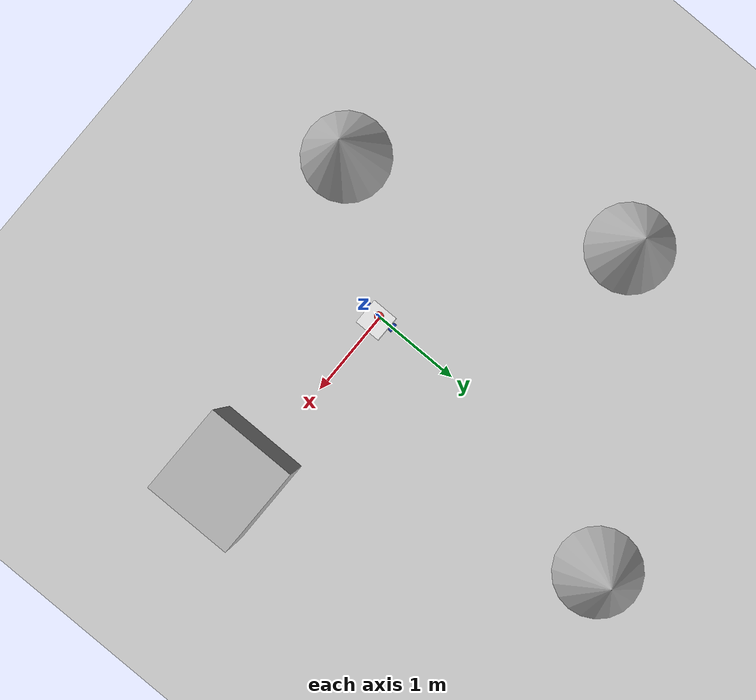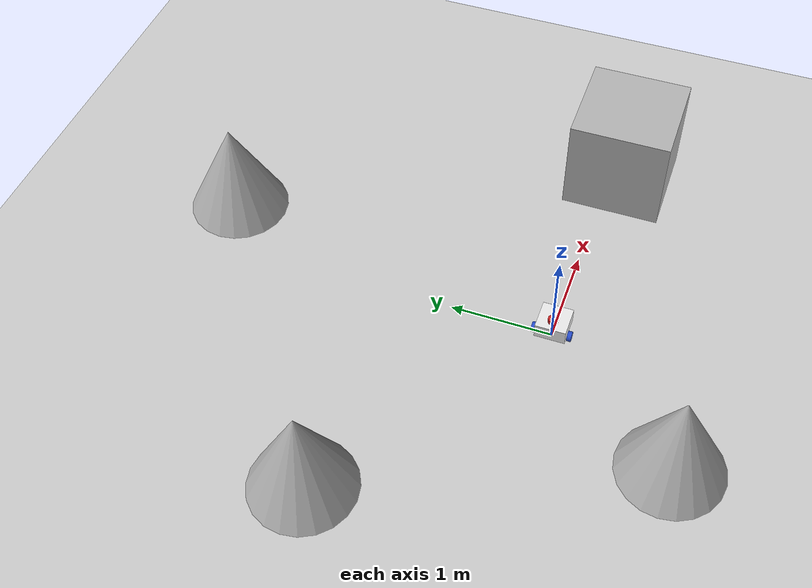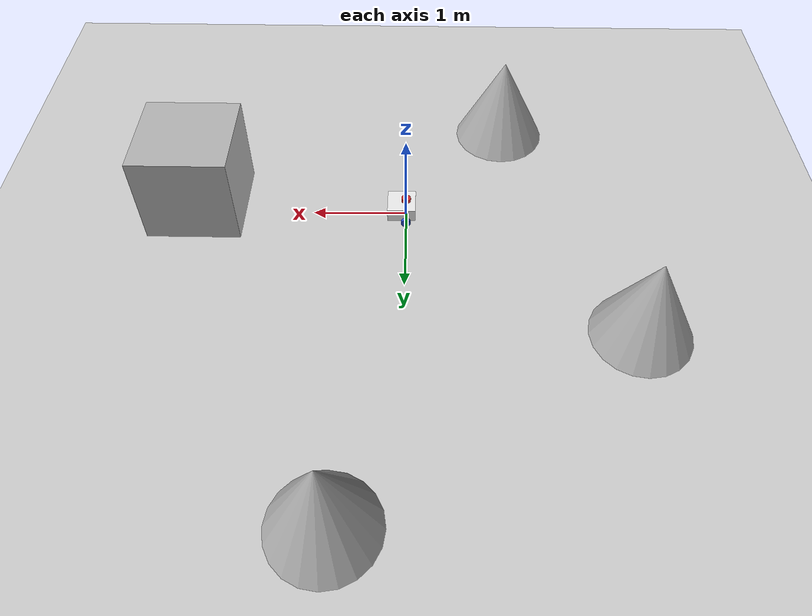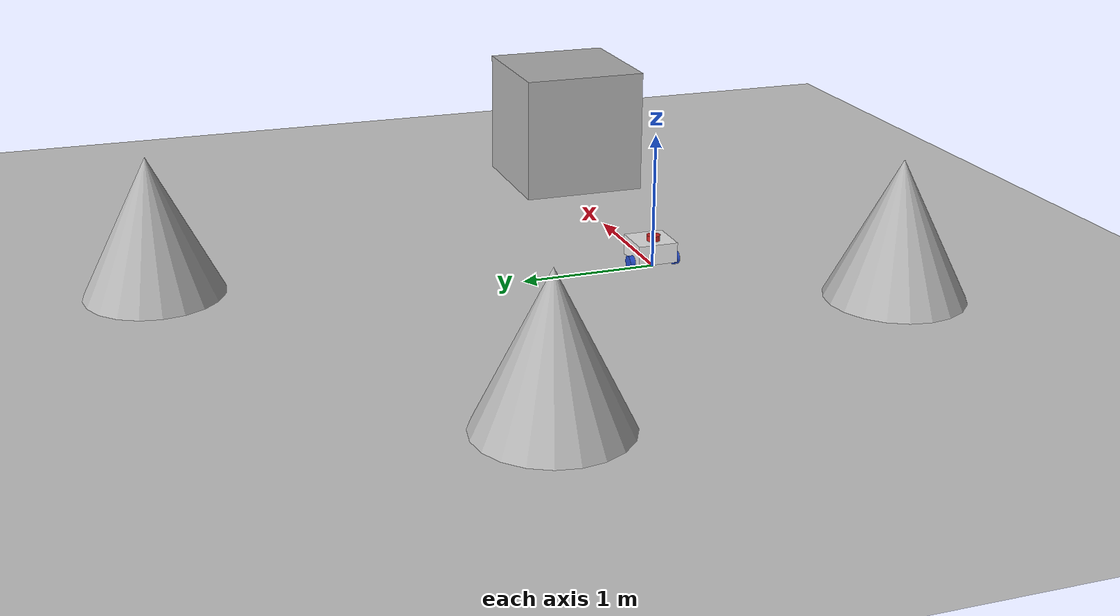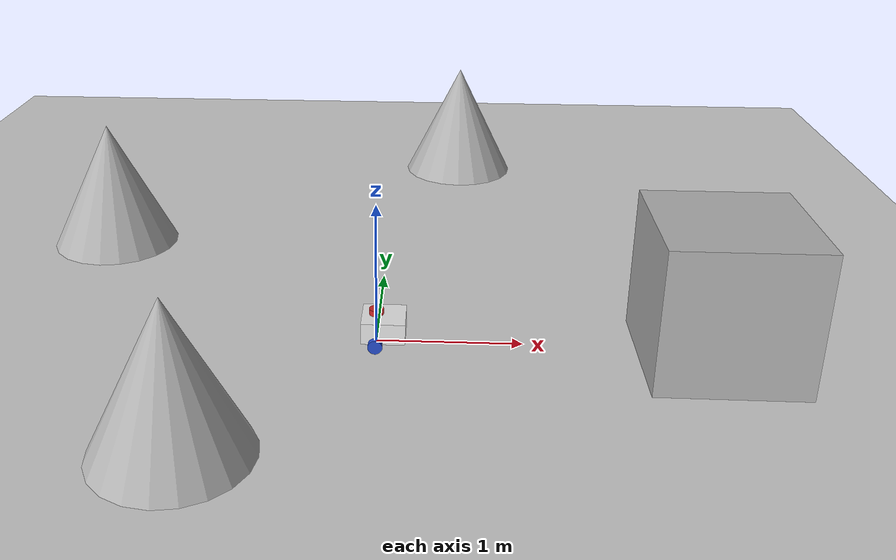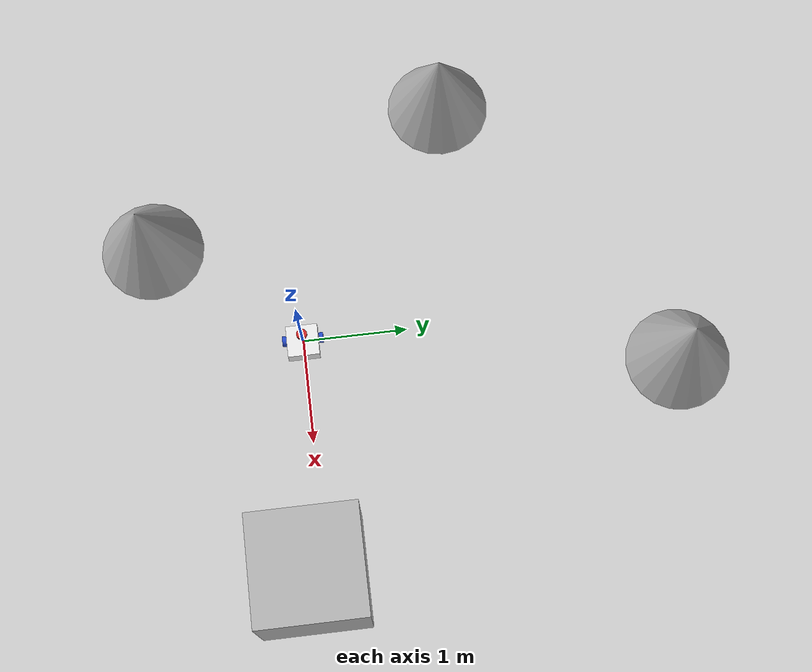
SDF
<sdf version='1.10'>
  <world name='empty'>
    <physics name='1ms' type='ignored'>
      <max_step_size>0.001</max_step_size>
      <real_time_factor>1</real_time_factor>
      <real_time_update_rate>1000</real_time_update_rate>
    </physics>
    <plugin name='gz::sim::systems::Physics' filename='gz-sim-physics-system'/>
    <plugin name='gz::sim::systems::UserCommands' filename='gz-sim-user-commands-system'/>
    <plugin name='gz::sim::systems::SceneBroadcaster' filename='gz-sim-scene-broadcaster-system'/>
    <plugin name='gz::sim::systems::Contact' filename='gz-sim-contact-system'/>
    <gravity>0 0 -9.8000000000000007</gravity>
    <magnetic_field>5.5644999999999998e-06 2.2875799999999999e-05 -4.2388400000000002e-05</magnetic_field>
    <atmosphere type='adiabatic'/>
    <scene>
      <ambient>0.400000006 0.400000006 0.400000006 1</ambient>
      <background>0.699999988 0.699999988 0.699999988 1</background>
      <shadows>true</shadows>
    </scene>
    <model name='ground_plane'>
      <static>true</static>
      <link name='link'>
        <collision name='collision'>
          <geometry>
            <plane>
              <normal>0 0 1</normal>
              <size>100 100</size>
            </plane>
          </geometry>
          <surface>
            <friction>
              <ode/>
            </friction>
            <bounce/>
            <contact/>
          </surface>
        </collision>
        <visual name='visual'>
          <geometry>
            <plane>
              <normal>0 0 1</normal>
              <size>100 100</size>
            </plane>
          </geometry>
          <material>
            <ambient>0.800000012 0.800000012 0.800000012 1</ambient>
            <diffuse>0.800000012 0.800000012 0.800000012 1</diffuse>
            <specular>0.800000012 0.800000012 0.800000012 1</specular>
          </material>
        </visual>
        <pose>0 0 0 0 0 0</pose>
        <inertial>
          <pose>0 0 0 0 0 0</pose>
          <mass>1</mass>
          <inertia>
            <ixx>1</ixx>
            <ixy>0</ixy>
            <ixz>0</ixz>
            <iyy>1</iyy>
            <iyz>0</iyz>
            <izz>1</izz>
          </inertia>
        </inertial>
        <enable_wind>false</enable_wind>
      </link>
      <pose>0 0 0 0 0 0</pose>
      <self_collide>false</self_collide>
    </model>
    <model name='box'>
      <pose>2.2569400000000002 -0.121952 0.5 1.0048e-21 -2.4640900000000001e-21 -3.9210800000000001e-22</pose>
      <link name='box_link'>
        <inertial>
          <inertia>
            <ixx>0.16666</ixx>
            <ixy>0</ixy>
            <ixz>0</ixz>
            <iyy>0.16666</iyy>
            <iyz>0</iyz>
            <izz>0.16666</izz>
          </inertia>
          <mass>1</mass>
          <pose>0 0 0 0 0 0</pose>
        </inertial>
        <collision name='box_collision'>
          <geometry>
            <box>
              <size>1 1 1</size>
            </box>
          </geometry>
          <surface>
            <friction>
              <ode/>
            </friction>
            <bounce/>
            <contact/>
          </surface>
        </collision>
        <visual name='box_visual'>
          <geometry>
            <box>
              <size>1 1 1</size>
            </box>
          </geometry>
          <material>
            <ambient>0.300000012 0.300000012 0.300000012 1</ambient>
            <diffuse>0.699999988 0.699999988 0.699999988 1</diffuse>
            <specular>1 1 1 1</specular>
          </material>
        </visual>
        <pose>0 0 0 0 0 0</pose>
        <enable_wind>false</enable_wind>
      </link>
      <static>false</static>
      <self_collide>false</self_collide>
    </model>
    <model name='cone'>
      <pose>0.59665299999999999 3.5346600000000001 0.5 2.2548599999999999e-12 -8.4123600000000005e-10 1.63284e-17</pose>
      <link name='cone_link'>
        <inertial>
          <inertia>
            <ixx>0.074999999999999997</ixx>
            <ixy>0</ixy>
            <ixz>0</ixz>
            <iyy>0.074999999999999997</iyy>
            <iyz>0</iyz>
            <izz>0.074999999999999997</izz>
          </inertia>
          <mass>1</mass>
          <pose>0 0 0 0 0 0</pose>
        </inertial>
        <collision name='cone_collision'>
          <geometry>
            <cone>
              <radius>0.5</radius>
              <length>1</length>
            </cone>
          </geometry>
          <surface>
            <friction>
              <ode/>
            </friction>
            <bounce/>
            <contact/>
          </surface>
        </collision>
        <visual name='cone_visual'>
          <geometry>
            <cone>
              <radius>0.5</radius>
              <length>1</length>
            </cone>
          </geometry>
          <material>
            <ambient>0.300000012 0.300000012 0.300000012 1</ambient>
            <diffuse>0.699999988 0.699999988 0.699999988 1</diffuse>
            <specular>1 1 1 1</specular>
          </material>
        </visual>
        <pose>0 0 0 0 0 0</pose>
        <enable_wind>false</enable_wind>
      </link>
      <static>false</static>
      <self_collide>false</self_collide>
    </model>
    <model name='cone_0'>
      <pose>-2.2755299999999998 1.57586 0.5 2.2548599999999999e-12 -8.4123600000000005e-10 1.63264e-17</pose>
      <link name='cone_link'>
        <inertial>
          <inertia>
            <ixx>0.074999999999999997</ixx>
            <ixy>0</ixy>
            <ixz>0</ixz>
            <iyy>0.074999999999999997</iyy>
            <iyz>0</iyz>
            <izz>0.074999999999999997</izz>
          </inertia>
          <mass>1</mass>
          <pose>0 0 0 0 0 0</pose>
        </inertial>
        <collision name='cone_collision'>
          <geometry>
            <cone>
              <radius>0.5</radius>
              <length>1</length>
            </cone>
          </geometry>
          <surface>
            <friction>
              <ode/>
            </friction>
            <bounce/>
            <contact/>
          </surface>
        </collision>
        <visual name='cone_visual'>
          <geometry>
            <cone>
              <radius>0.5</radius>
              <length>1</length>
            </cone>
          </geometry>
          <material>
            <ambient>0.300000012 0.300000012 0.300000012 1</ambient>
            <diffuse>0.699999988 0.699999988 0.699999988 1</diffuse>
            <specular>1 1 1 1</specular>
          </material>
        </visual>
        <pose>0 0 0 0 0 0</pose>
        <enable_wind>false</enable_wind>
      </link>
      <static>false</static>
      <self_collide>false</self_collide>
    </model>
    <model name='cone_1'>
      <pose>-1.08355 -1.37382 0.5 2.2548599999999999e-12 -8.4123600000000005e-10 1.6328600000000001e-17</pose>
      <link name='cone_link'>
        <inertial>
          <inertia>
            <ixx>0.074999999999999997</ixx>
            <ixy>0</ixy>
            <ixz>0</ixz>
            <iyy>0.074999999999999997</iyy>
            <iyz>0</iyz>
            <izz>0.074999999999999997</izz>
          </inertia>
          <mass>1</mass>
          <pose>0 0 0 0 0 0</pose>
        </inertial>
        <collision name='cone_collision'>
          <geometry>
            <cone>
              <radius>0.5</radius>
              <length>1</length>
            </cone>
          </geometry>
          <surface>
            <friction>
              <ode/>
            </friction>
            <bounce/>
            <contact/>
          </surface>
        </collision>
        <visual name='cone_visual'>
          <geometry>
            <cone>
              <radius>0.5</radius>
              <length>1</length>
            </cone>
          </geometry>
          <material>
            <ambient>0.300000012 0.300000012 0.300000012 1</ambient>
            <diffuse>0.699999988 0.699999988 0.699999988 1</diffuse>
            <specular>1 1 1 1</specular>
          </material>
        </visual>
        <pose>0 0 0 0 0 0</pose>
        <enable_wind>false</enable_wind>
      </link>
      <static>false</static>
      <self_collide>false</self_collide>
    </model>
    <model name='my_bot'>
      <link name='base_link'>
        <inertial>
          <pose>0.055714285714285737 0 0.07857142857142857 0 0 0</pose>
          <mass>0.69999999999999996</mass>
          <inertia>
            <ixx>0.0064169047619047617</ixx>
            <ixy>0</ixy>
            <ixz>0.0011892857142857161</ixz>
            <iyy>0.0074540476190476084</iyy>
            <iyz>0</iyz>
            <izz>0.008762142857142852</izz>
          </inertia>
        </inertial>
        <collision name='base_link_fixed_joint_lump__chassis_collision'>
          <pose>0.049999999999999989 0 0.074999999999999997 0 0 0</pose>
          <geometry>
            <box>
              <size>0.29999999999999999 0.29999999999999999 0.14999999999999999</size>
            </box>
          </geometry>
          <surface>
            <contact>
              <ode/>
            </contact>
            <friction>
              <ode/>
            </friction>
            <bounce/>
          </surface>
        </collision>
        <collision name='base_link_fixed_joint_lump__caster_wheel_collision_1'>
          <pose>0.14000000000000001 0 0 0 0 0</pose>
          <geometry>
            <sphere>
              <radius>0.050000000000000003</radius>
            </sphere>
          </geometry>
          <surface>
            <contact>
              <ode/>
            </contact>
            <friction>
              <ode>
                <mu>0.001</mu>
                <mu2>0.001</mu2>
              </ode>
            </friction>
            <bounce/>
          </surface>
        </collision>
        <collision name='base_link_fixed_joint_lump__lidar_link_collision_2'>
          <pose>0 0 0.17499999999999999 0 0 0</pose>
          <geometry>
            <cylinder>
              <length>0.040000000000000001</length>
              <radius>0.050000000000000003</radius>
            </cylinder>
          </geometry>
          <surface>
            <contact>
              <ode/>
            </contact>
            <friction>
              <ode/>
            </friction>
            <bounce/>
          </surface>
        </collision>
        <visual name='base_link_fixed_joint_lump__chassis_visual'>
          <pose>0.049999999999999989 0 0.074999999999999997 0 0 0</pose>
          <geometry>
            <box>
              <size>0.29999999999999999 0.29999999999999999 0.14999999999999999</size>
            </box>
          </geometry>
          <material>
            <script>
              <name>Gazebo/White</name>
              <uri>file://media/materials/scripts/gazebo.material</uri>
            </script>
            <diffuse>1 1 1 1</diffuse>
            <ambient>1 1 1 1</ambient>
          </material>
        </visual>
        <visual name='base_link_fixed_joint_lump__caster_wheel_visual_1'>
          <pose>0.14000000000000001 0 0 0 0 0</pose>
          <geometry>
            <sphere>
              <radius>0.050000000000000003</radius>
            </sphere>
          </geometry>
          <material>
            <script>
              <name>Gazebo/Black</name>
              <uri>file://media/materials/scripts/gazebo.material</uri>
            </script>
            <diffuse>0 0 0 1</diffuse>
            <ambient>0 0 0 1</ambient>
          </material>
        </visual>
        <visual name='base_link_fixed_joint_lump__lidar_link_visual_2'>
          <pose>0 0 0.17499999999999999 0 0 0</pose>
          <geometry>
            <cylinder>
              <length>0.040000000000000001</length>
              <radius>0.050000000000000003</radius>
            </cylinder>
          </geometry>
          <material>
            <script>
              <name>Gazebo/Red</name>
              <uri>file://media/materials/scripts/gazebo.material</uri>
            </script>
            <diffuse>1 0 0 1</diffuse>
            <ambient>1 0 0 1</ambient>
          </material>
        </visual>
        <sensor name='gpu_lidar' type='gpu_lidar'>
          <pose>0.10000000000000001 0 0.34999999999999998 0 0 0</pose>
          <topic>scan</topic>
          <update_rate>2</update_rate>
          <enable_metrics>false</enable_metrics>
          <lidar>
            <scan>
              <horizontal>
                <samples>720</samples>
                <resolution>1</resolution>
                <min_angle>-3.1400000000000001</min_angle>
                <max_angle>3.1400000000000001</max_angle>
              </horizontal>
              <vertical>
                <samples>1</samples>
                <min_angle>0</min_angle>
                <max_angle>0</max_angle>
                <resolution>1</resolution>
              </vertical>
            </scan>
            <range>
              <min>0.01</min>
              <max>12</max>
              <resolution>0.0050000000000000001</resolution>
            </range>
            <noise>
              <type>none</type>
              <mean>0</mean>
              <stddev>0</stddev>
            </noise>
            <visibility_mask>4294967295</visibility_mask>
          </lidar>
        </sensor>
        <pose>0 0 0 0 0 0</pose>
        <enable_wind>false</enable_wind>
      </link>
      <joint name='left_wheel_joint' type='revolute'>
        <pose>0 0 0 0 0 0</pose>
        <parent>base_link</parent>
        <child>left_wheel</child>
        <axis>
          <xyz>0 0 1</xyz>
          <limit>
            <lower>-inf</lower>
            <upper>inf</upper>
            <effort>inf</effort>
            <velocity>inf</velocity>
            <stiffness>100000000</stiffness>
            <dissipation>1</dissipation>
          </limit>
          <dynamics>
            <spring_reference>0</spring_reference>
            <spring_stiffness>0</spring_stiffness>
            <damping>0</damping>
            <friction>0</friction>
          </dynamics>
        </axis>
      </joint>
      <link name='left_wheel'>
        <pose>-2.7464999999999998e-26 0.17499999999999999 6.9388900000000004e-18 -1.5708 -8.8496600000000058e-11 1.3764802380765222e-24</pose>
        <inertial>
          <pose>0 0 0 0 0 0</pose>
          <mass>0.10000000000000001</mass>
          <inertia>
            <ixx>7.5833333333333352e-05</ixx>
            <ixy>0</ixy>
            <ixz>0</ixz>
            <iyy>7.5833333333333352e-05</iyy>
            <iyz>0</iyz>
            <izz>0.000125</izz>
          </inertia>
        </inertial>
        <collision name='left_wheel_collision'>
          <pose>0 0 0 0 0 0</pose>
          <geometry>
            <cylinder>
              <length>0.040000000000000001</length>
              <radius>0.050000000000000003</radius>
            </cylinder>
          </geometry>
          <surface>
            <contact>
              <ode/>
            </contact>
            <friction>
              <ode/>
            </friction>
            <bounce/>
          </surface>
        </collision>
        <visual name='left_wheel_visual'>
          <pose>0 0 0 0 0 0</pose>
          <geometry>
            <cylinder>
              <length>0.040000000000000001</length>
              <radius>0.050000000000000003</radius>
            </cylinder>
          </geometry>
          <material>
            <script>
              <name>Gazebo/Blue</name>
              <uri>file://media/materials/scripts/gazebo.material</uri>
            </script>
            <diffuse>0.25 0.25 1 1</diffuse>
            <ambient>0.25 0.25 1 1</ambient>
          </material>
        </visual>
        <enable_wind>false</enable_wind>
      </link>
      <joint name='right_wheel_joint' type='revolute'>
        <pose>0 0 0 0 0 0</pose>
        <parent>base_link</parent>
        <child>right_wheel</child>
        <axis>
          <xyz>0 0 -1</xyz>
          <limit>
            <lower>-inf</lower>
            <upper>inf</upper>
            <effort>inf</effort>
            <velocity>inf</velocity>
            <stiffness>100000000</stiffness>
            <dissipation>1</dissipation>
          </limit>
          <dynamics>
            <spring_reference>0</spring_reference>
            <spring_stiffness>0</spring_stiffness>
            <damping>0</damping>
            <friction>0</friction>
          </dynamics>
        </axis>
      </joint>
      <link name='right_wheel'>
        <pose>3.3927300000000001e-26 -0.17499999999999999 1.3877799999999999e-17 1.5708 -8.8496600000000058e-11 2.7141863849396216e-25</pose>
        <inertial>
          <pose>0 0 0 0 0 0</pose>
          <mass>0.10000000000000001</mass>
          <inertia>
            <ixx>7.5833333333333352e-05</ixx>
            <ixy>0</ixy>
            <ixz>0</ixz>
            <iyy>7.5833333333333352e-05</iyy>
            <iyz>0</iyz>
            <izz>0.000125</izz>
          </inertia>
        </inertial>
        <collision name='right_wheel_collision'>
          <pose>0 0 0 0 0 0</pose>
          <geometry>
            <cylinder>
              <length>0.040000000000000001</length>
              <radius>0.050000000000000003</radius>
            </cylinder>
          </geometry>
          <surface>
            <contact>
              <ode/>
            </contact>
            <friction>
              <ode/>
            </friction>
            <bounce/>
          </surface>
        </collision>
        <visual name='right_wheel_visual'>
          <pose>0 0 0 0 0 0</pose>
          <geometry>
            <cylinder>
              <length>0.040000000000000001</length>
              <radius>0.050000000000000003</radius>
            </cylinder>
          </geometry>
          <material>
            <script>
              <name>Gazebo/Blue</name>
              <uri>file://media/materials/scripts/gazebo.material</uri>
            </script>
            <diffuse>0.25 0.25 1 1</diffuse>
            <ambient>0.25 0.25 1 1</ambient>
          </material>
        </visual>
        <enable_wind>false</enable_wind>
      </link>
      <plugin name='gz::sim::systems::DiffDrive' filename='gz-sim-diff-drive-system'>
        <left_joint>left_wheel_joint</left_joint>
        <right_joint>right_wheel_joint</right_joint>
        <wheel_seperation>0.35</wheel_seperation>
        <wheel_radius>0.05</wheel_radius>
        <max_linear_acceleration>5.0</max_linear_acceleration>
        <topic>cmd_vel</topic>
        <frame_id>odom</frame_id>
        <child_frame_id>base_link</child_frame_id>
        <odom_topic>odom</odom_topic>
        <odom_publisher_frequency>30</odom_publisher_frequency>
        <tf_topic>/tf</tf_topic>
      </plugin>
      <plugin name='gz::sim::systems::JointStatePublisher' filename='gz-sim-joint-state-publisher-system'>
        <topic>joint_states</topic>
        <joint_name>left_wheel_joint</joint_name>
        <joint_name>right_wheel_joint</joint_name>
      </plugin>
      <plugin name='gz::sim::systems::Sensors' filename='gz-sim-sensors-system'>
        <render_engine>ogre2</render_engine>
      </plugin>
      <frame name='caster_wheel_joint' attached_to='chassis'>
        <pose>0.23999999999999999 0 0 0 0 0</pose>
      </frame>
      <frame name='caster_wheel' attached_to='caster_wheel_joint'>
        <pose>0 0 0 0 0 0</pose>
      </frame>
      <frame name='lidar_joint' attached_to='chassis'>
        <pose>0.10000000000000001 0 0.17499999999999999 0 0 0</pose>
      </frame>
      <frame name='lidar_link' attached_to='lidar_joint'>
        <pose>0 0 0 0 0 0</pose>
      </frame>
      <frame name='chassis_joint' attached_to='base_link'>
        <pose>-0.10000000000000001 0 0 0 0 0</pose>
      </frame>
      <frame name='chassis' attached_to='chassis_joint'>
        <pose>0 0 0 0 0 0</pose>
      </frame>
      <pose>9.2159699999999998e-10 -2.55145e-18 0.049999200000000001 4.0521399999999998e-17 1.8520400000000002e-08 2.2481400000000001e-17</pose>
      <static>false</static>
      <self_collide>false</self_collide>
    </model>
    <light name='sun' type='directional'>
      <pose>0 0 10 0 0 0</pose>
      <cast_shadows>true</cast_shadows>
      <intensity>1</intensity>
      <direction>-0.5 0.10000000000000001 -0.90000000000000002</direction>
      <diffuse>0.800000012 0.800000012 0.800000012 1</diffuse>
      <specular>0.200000003 0.200000003 0.200000003 1</specular>
      <attenuation>
        <range>1000</range>
        <linear>0.0099999997764825821</linear>
        <constant>0.89999997615814209</constant>
        <quadratic>0.0010000000474974513</quadratic>
      </attenuation>
      <spot>
        <inner_angle>0</inner_angle>
        <outer_angle>0</outer_angle>
        <falloff>0</falloff>
      </spot>
    </light>
  </world>
</sdf>
